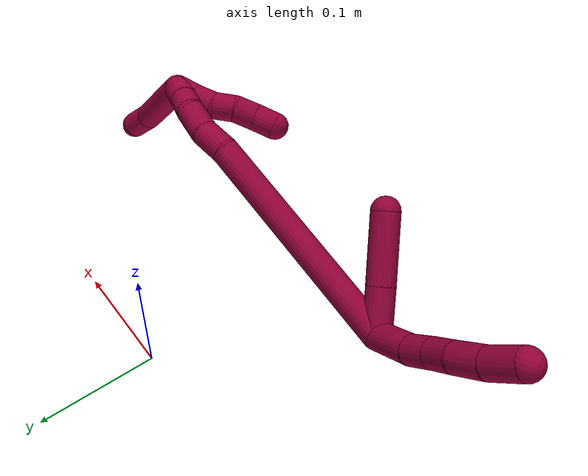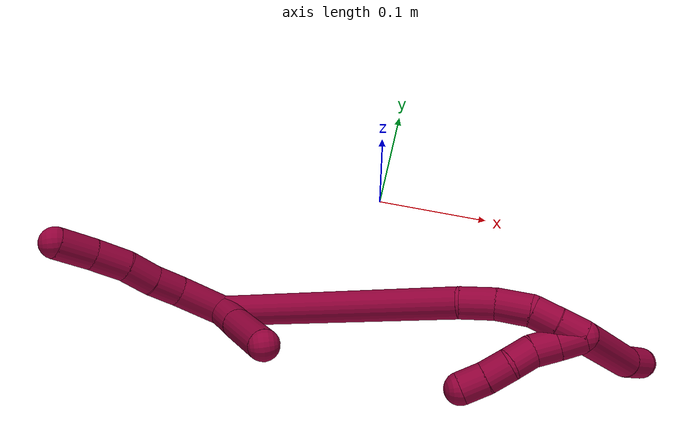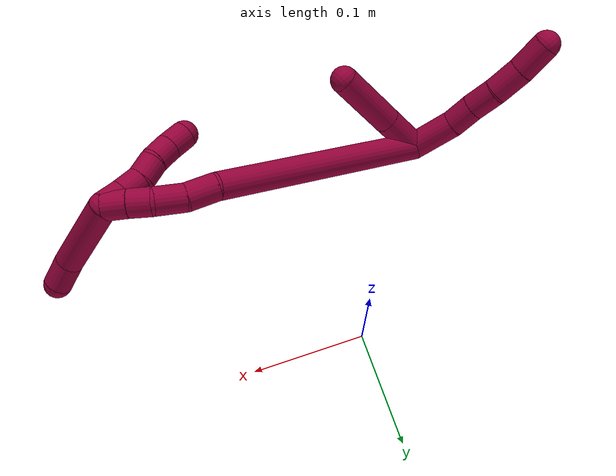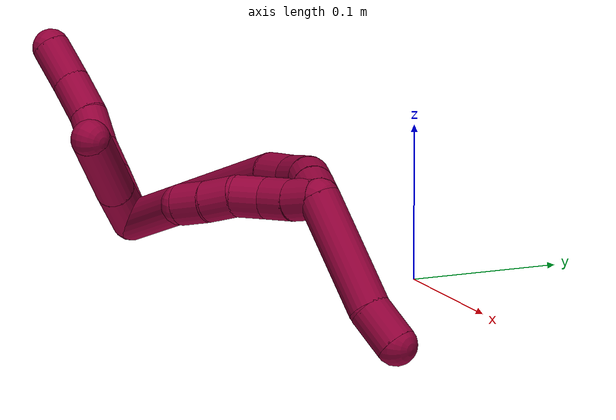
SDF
<sdf version="1.7">
 <world name="default">
  <model name="8">
   <static>0</static>
   <link name="8">
    <collision name="collision-cylinder-e_1_2_8">
     <pose>0.001048 0.011949 0.017153 -0.608435 0.050084 -0.015727</pose>
     <geometry><cylinder><radius>0.0125</radius><length>0.041862</length></cylinder></geometry>
     <surface>
      <friction><ode><mu>1.16</mu><mu2>1.16</mu2><slip1>0</slip1><slip2>0</slip2></ode></friction>
      <contact><ode><kp>1e+06</kp><kd>1</kd><max_vel>0</max_vel><min_depth>0.001</min_depth></ode></contact>
     </surface>
    </collision>
    <visual name="visual-cylinder-e_1_2_8">
     <pose>0.001048 0.011949 0.017153 -0.608435 0.050084 -0.015727</pose>
     <geometry><cylinder><radius>0.0125</radius><length>0.041862</length></cylinder></geometry>
     <material><ambient>0.584314 0 0.227451 1</ambient></material>
    </visual>
    <collision name="collision-cylinder-e_2_8_9">
     <pose>0.004898 0.030974 0.043707 -0.645276 0.233814 -0.078486</pose>
     <geometry><cylinder><radius>0.0125</radius><length>0.024189</length></cylinder></geometry>
     <surface>
      <friction><ode><mu>1.16</mu><mu2>1.16</mu2><slip1>0</slip1><slip2>0</slip2></ode></friction>
      <contact><ode><kp>1e+06</kp><kd>1</kd><max_vel>0</max_vel><min_depth>0.001</min_depth></ode></contact>
     </surface>
    </collision>
    <visual name="visual-cylinder-e_2_8_9">
     <pose>0.004898 0.030974 0.043707 -0.645276 0.233814 -0.078486</pose>
     <geometry><cylinder><radius>0.0125</radius><length>0.024189</length></cylinder></geometry>
     <material><ambient>0.584314 0 0.227451 1</ambient></material>
    </visual>
    <collision name="collision-cylinder-e_3_9_10">
     <pose>0.01007 0.046398 0.062184 -0.743576 0.189821 -0.074204</pose>
     <geometry><cylinder><radius>0.0125</radius><length>0.025116</length></cylinder></geometry>
     <surface>
      <friction><ode><mu>1.16</mu><mu2>1.16</mu2><slip1>0</slip1><slip2>0</slip2></ode></friction>
      <contact><ode><kp>1e+06</kp><kd>1</kd><max_vel>0</max_vel><min_depth>0.001</min_depth></ode></contact>
     </surface>
    </collision>
    <visual name="visual-cylinder-e_3_9_10">
     <pose>0.01007 0.046398 0.062184 -0.743576 0.189821 -0.074204</pose>
     <geometry><cylinder><radius>0.0125</radius><length>0.025116</length></cylinder></geometry>
     <material><ambient>0.584314 0 0.227451 1</ambient></material>
    </visual>
    <collision name="collision-cylinder-e_4_10_11">
     <pose>0.015591 0.06247 0.082892 -0.586212 0.222027 -0.067259</pose>
     <geometry><cylinder><radius>0.0125</radius><length>0.028627</length></cylinder></geometry>
     <surface>
      <friction><ode><mu>1.16</mu><mu2>1.16</mu2><slip1>0</slip1><slip2>0</slip2></ode></friction>
      <contact><ode><kp>1e+06</kp><kd>1</kd><max_vel>0</max_vel><min_depth>0.001</min_depth></ode></contact>
     </surface>
    </collision>
    <visual name="visual-cylinder-e_4_10_11">
     <pose>0.015591 0.06247 0.082892 -0.586212 0.222027 -0.067259</pose>
     <geometry><cylinder><radius>0.0125</radius><length>0.028627</length></cylinder></geometry>
     <material><ambient>0.584314 0 0.227451 1</ambient></material>
    </visual>
    <collision name="collision-cylinder-e_5_11_6">
     <pose>0.023775 0.078106 0.106363 -0.589094 0.33967 -0.103955</pose>
     <geometry><cylinder><radius>0.0125</radius><length>0.030205</length></cylinder></geometry>
     <surface>
      <friction><ode><mu>1.16</mu><mu2>1.16</mu2><slip1>0</slip1><slip2>0</slip2></ode></friction>
      <contact><ode><kp>1e+06</kp><kd>1</kd><max_vel>0</max_vel><min_depth>0.001</min_depth></ode></contact>
     </surface>
    </collision>
    <visual name="visual-cylinder-e_5_11_6">
     <pose>0.023775 0.078106 0.106363 -0.589094 0.33967 -0.103955</pose>
     <geometry><cylinder><radius>0.0125</radius><length>0.030205</length></cylinder></geometry>
     <material><ambient>0.584314 0 0.227451 1</ambient></material>
    </visual>
    <collision name="collision-cylinder-e_1_2_12">
     <pose>0.019004 0.001932 -0.005163 -2.78356 1.28849 -2.66881</pose>
     <geometry><cylinder><radius>0.0125</radius><length>0.039574</length></cylinder></geometry>
     <surface>
      <friction><ode><mu>1.16</mu><mu2>1.16</mu2><slip1>0</slip1><slip2>0</slip2></ode></friction>
      <contact><ode><kp>1e+06</kp><kd>1</kd><max_vel>0</max_vel><min_depth>0.001</min_depth></ode></contact>
     </surface>
    </collision>
    <visual name="visual-cylinder-e_1_2_12">
     <pose>0.019004 0.001932 -0.005163 -2.78356 1.28849 -2.66881</pose>
     <geometry><cylinder><radius>0.0125</radius><length>0.039574</length></cylinder></geometry>
     <material><ambient>0.584314 0 0.227451 1</ambient></material>
    </visual>
    <collision name="collision-cylinder-e_2_12_5">
     <pose>0.066889 0.007598 -0.01837 -2.70692 1.27285 -2.56086</pose>
     <geometry><cylinder><radius>0.0125</radius><length>0.060426</length></cylinder></geometry>
     <surface>
      <friction><ode><mu>1.16</mu><mu2>1.16</mu2><slip1>0</slip1><slip2>0</slip2></ode></friction>
      <contact><ode><kp>1e+06</kp><kd>1</kd><max_vel>0</max_vel><min_depth>0.001</min_depth></ode></contact>
     </surface>
    </collision>
    <visual name="visual-cylinder-e_2_12_5">
     <pose>0.066889 0.007598 -0.01837 -2.70692 1.27285 -2.56086</pose>
     <geometry><cylinder><radius>0.0125</radius><length>0.060426</length></cylinder></geometry>
     <material><ambient>0.584314 0 0.227451 1</ambient></material>
    </visual>
    <collision name="collision-cylinder-e_1_2_13">
     <pose>0.049183 0.01306 -0.087949 -2.99417 0.505262 -2.58437</pose>
     <geometry><cylinder><radius>0.0125</radius><length>0.203221</length></cylinder></geometry>
     <surface>
      <friction><ode><mu>1.16</mu><mu2>1.16</mu2><slip1>0</slip1><slip2>0</slip2></ode></friction>
      <contact><ode><kp>1e+06</kp><kd>1</kd><max_vel>0</max_vel><min_depth>0.001</min_depth></ode></contact>
     </surface>
    </collision>
    <visual name="visual-cylinder-e_1_2_13">
     <pose>0.049183 0.01306 -0.087949 -2.99417 0.505262 -2.58437</pose>
     <geometry><cylinder><radius>0.0125</radius><length>0.203221</length></cylinder></geometry>
     <material><ambient>0.584314 0 0.227451 1</ambient></material>
    </visual>
    <collision name="collision-cylinder-e_2_13_14">
     <pose>0.103046 0.025795 -0.189053 3.11687 0.341703 2.99856</pose>
     <geometry><cylinder><radius>0.0125</radius><length>0.027932</length></cylinder></geometry>
     <surface>
      <friction><ode><mu>1.16</mu><mu2>1.16</mu2><slip1>0</slip1><slip2>0</slip2></ode></friction>
      <contact><ode><kp>1e+06</kp><kd>1</kd><max_vel>0</max_vel><min_depth>0.001</min_depth></ode></contact>
     </surface>
    </collision>
    <visual name="visual-cylinder-e_2_13_14">
     <pose>0.103046 0.025795 -0.189053 3.11687 0.341703 2.99856</pose>
     <geometry><cylinder><radius>0.0125</radius><length>0.027932</length></cylinder></geometry>
     <material><ambient>0.584314 0 0.227451 1</ambient></material>
    </visual>
    <collision name="collision-cylinder-e_3_14_15">
     <pose>0.114821 0.02418 -0.213838 3.03116 0.545091 2.75111</pose>
     <geometry><cylinder><radius>0.0125</radius><length>0.027369</length></cylinder></geometry>
     <surface>
      <friction><ode><mu>1.16</mu><mu2>1.16</mu2><slip1>0</slip1><slip2>0</slip2></ode></friction>
      <contact><ode><kp>1e+06</kp><kd>1</kd><max_vel>0</max_vel><min_depth>0.001</min_depth></ode></contact>
     </surface>
    </collision>
    <visual name="visual-cylinder-e_3_14_15">
     <pose>0.114821 0.02418 -0.213838 3.03116 0.545091 2.75111</pose>
     <geometry><cylinder><radius>0.0125</radius><length>0.027369</length></cylinder></geometry>
     <material><ambient>0.584314 0 0.227451 1</ambient></material>
    </visual>
    <collision name="collision-cylinder-e_4_15_16">
     <pose>0.12667 0.018889 -0.233429 2.67581 0.490084 1.62362</pose>
     <geometry><cylinder><radius>0.0125</radius><length>0.020198</length></cylinder></geometry>
     <surface>
      <friction><ode><mu>1.16</mu><mu2>1.16</mu2><slip1>0</slip1><slip2>0</slip2></ode></friction>
      <contact><ode><kp>1e+06</kp><kd>1</kd><max_vel>0</max_vel><min_depth>0.001</min_depth></ode></contact>
     </surface>
    </collision>
    <visual name="visual-cylinder-e_4_15_16">
     <pose>0.12667 0.018889 -0.233429 2.67581 0.490084 1.62362</pose>
     <geometry><cylinder><radius>0.0125</radius><length>0.020198</length></cylinder></geometry>
     <material><ambient>0.584314 0 0.227451 1</ambient></material>
    </visual>
    <collision name="collision-cylinder-e_5_16_1">
     <pose>0.135922 0.01033 -0.249888 2.6494 0.436489 1.4466</pose>
     <geometry><cylinder><radius>0.0125</radius><length>0.02128</length></cylinder></geometry>
     <surface>
      <friction><ode><mu>1.16</mu><mu2>1.16</mu2><slip1>0</slip1><slip2>0</slip2></ode></friction>
      <contact><ode><kp>1e+06</kp><kd>1</kd><max_vel>0</max_vel><min_depth>0.001</min_depth></ode></contact>
     </surface>
    </collision>
    <visual name="visual-cylinder-e_5_16_1">
     <pose>0.135922 0.01033 -0.249888 2.6494 0.436489 1.4466</pose>
     <geometry><cylinder><radius>0.0125</radius><length>0.02128</length></cylinder></geometry>
     <material><ambient>0.584314 0 0.227451 1</ambient></material>
    </visual>
    <collision name="collision-cylinder-e_1_1_17">
     <pose>0.125428 -0.016422 -0.283829 2.42427 -0.417893 -1.02953</pose>
     <geometry><cylinder><radius>0.0125</radius><length>0.073885</length></cylinder></geometry>
     <surface>
      <friction><ode><mu>1.16</mu><mu2>1.16</mu2><slip1>0</slip1><slip2>0</slip2></ode></friction>
      <contact><ode><kp>1e+06</kp><kd>1</kd><max_vel>0</max_vel><min_depth>0.001</min_depth></ode></contact>
     </surface>
    </collision>
    <visual name="visual-cylinder-e_1_1_17">
     <pose>0.125428 -0.016422 -0.283829 2.42427 -0.417893 -1.02953</pose>
     <geometry><cylinder><radius>0.0125</radius><length>0.073885</length></cylinder></geometry>
     <material><ambient>0.584314 0 0.227451 1</ambient></material>
    </visual>
    <collision name="collision-cylinder-e_2_17_4">
     <pose>0.104284 -0.044034 -0.319436 2.6519 -0.490569 -1.57265</pose>
     <geometry><cylinder><radius>0.0125</radius><length>0.026115</length></cylinder></geometry>
     <surface>
      <friction><ode><mu>1.16</mu><mu2>1.16</mu2><slip1>0</slip1><slip2>0</slip2></ode></friction>
      <contact><ode><kp>1e+06</kp><kd>1</kd><max_vel>0</max_vel><min_depth>0.001</min_depth></ode></contact>
     </surface>
    </collision>
    <visual name="visual-cylinder-e_2_17_4">
     <pose>0.104284 -0.044034 -0.319436 2.6519 -0.490569 -1.57265</pose>
     <geometry><cylinder><radius>0.0125</radius><length>0.026115</length></cylinder></geometry>
     <material><ambient>0.584314 0 0.227451 1</ambient></material>
    </visual>
    <collision name="collision-cylinder-e_1_1_18">
     <pose>0.139031 0.003241 -0.248813 0.258586 -0.139458 -0.018161</pose>
     <geometry><cylinder><radius>0.0125</radius><length>0.02</length></cylinder></geometry>
     <surface>
      <friction><ode><mu>1.16</mu><mu2>1.16</mu2><slip1>0</slip1><slip2>0</slip2></ode></friction>
      <contact><ode><kp>1e+06</kp><kd>1</kd><max_vel>0</max_vel><min_depth>0.001</min_depth></ode></contact>
     </surface>
    </collision>
    <visual name="visual-cylinder-e_1_1_18">
     <pose>0.139031 0.003241 -0.248813 0.258586 -0.139458 -0.018161</pose>
     <geometry><cylinder><radius>0.0125</radius><length>0.02</length></cylinder></geometry>
     <material><ambient>0.584314 0 0.227451 1</ambient></material>
    </visual>
    <collision name="collision-cylinder-e_2_18_19">
     <pose>0.137005 -0.000998 -0.229406 0.171867 -0.063632 -0.005483</pose>
     <geometry><cylinder><radius>0.0125</radius><length>0.02</length></cylinder></geometry>
     <surface>
      <friction><ode><mu>1.16</mu><mu2>1.16</mu2><slip1>0</slip1><slip2>0</slip2></ode></friction>
      <contact><ode><kp>1e+06</kp><kd>1</kd><max_vel>0</max_vel><min_depth>0.001</min_depth></ode></contact>
     </surface>
    </collision>
    <visual name="visual-cylinder-e_2_18_19">
     <pose>0.137005 -0.000998 -0.229406 0.171867 -0.063632 -0.005483</pose>
     <geometry><cylinder><radius>0.0125</radius><length>0.02</length></cylinder></geometry>
     <material><ambient>0.584314 0 0.227451 1</ambient></material>
    </visual>
    <collision name="collision-cylinder-e_3_19_20">
     <pose>0.138332 -0.005762 -0.210257 0.317112 0.19762 0.0317</pose>
     <geometry><cylinder><radius>0.0125</radius><length>0.02</length></cylinder></geometry>
     <surface>
      <friction><ode><mu>1.16</mu><mu2>1.16</mu2><slip1>0</slip1><slip2>0</slip2></ode></friction>
      <contact><ode><kp>1e+06</kp><kd>1</kd><max_vel>0</max_vel><min_depth>0.001</min_depth></ode></contact>
     </surface>
    </collision>
    <visual name="visual-cylinder-e_3_19_20">
     <pose>0.138332 -0.005762 -0.210257 0.317112 0.19762 0.0317</pose>
     <geometry><cylinder><radius>0.0125</radius><length>0.02</length></cylinder></geometry>
     <material><ambient>0.584314 0 0.227451 1</ambient></material>
    </visual>
    <collision name="collision-cylinder-e_4_20_21">
     <pose>0.139983 -0.013182 -0.191948 0.451669 -0.03126 -0.007183</pose>
     <geometry><cylinder><radius>0.0125</radius><length>0.02</length></cylinder></geometry>
     <surface>
      <friction><ode><mu>1.16</mu><mu2>1.16</mu2><slip1>0</slip1><slip2>0</slip2></ode></friction>
      <contact><ode><kp>1e+06</kp><kd>1</kd><max_vel>0</max_vel><min_depth>0.001</min_depth></ode></contact>
     </surface>
    </collision>
    <visual name="visual-cylinder-e_4_20_21">
     <pose>0.139983 -0.013182 -0.191948 0.451669 -0.03126 -0.007183</pose>
     <geometry><cylinder><radius>0.0125</radius><length>0.02</length></cylinder></geometry>
     <material><ambient>0.584314 0 0.227451 1</ambient></material>
    </visual>
    <collision name="collision-cylinder-e_5_21_3">
     <pose>0.138904 -0.020807 -0.173533 0.333313 -0.076685 -0.012906</pose>
     <geometry><cylinder><radius>0.0125</radius><length>0.02</length></cylinder></geometry>
     <surface>
      <friction><ode><mu>1.16</mu><mu2>1.16</mu2><slip1>0</slip1><slip2>0</slip2></ode></friction>
      <contact><ode><kp>1e+06</kp><kd>1</kd><max_vel>0</max_vel><min_depth>0.001</min_depth></ode></contact>
     </surface>
    </collision>
    <visual name="visual-cylinder-e_5_21_3">
     <pose>0.138904 -0.020807 -0.173533 0.333313 -0.076685 -0.012906</pose>
     <geometry><cylinder><radius>0.0125</radius><length>0.02</length></cylinder></geometry>
     <material><ambient>0.584314 0 0.227451 1</ambient></material>
    </visual>
    <collision name="collision-sphere-3">
     <pose>0.138138 -0.024069 -0.164111 0 -0 0</pose>
     <geometry><sphere><radius>0.0125</radius></sphere></geometry>
     <surface>
      <friction><ode><mu>1.16</mu><mu2>1.16</mu2><slip1>0</slip1><slip2>0</slip2></ode></friction>
      <contact><ode><kp>1e+06</kp><kd>1</kd><max_vel>0</max_vel><min_depth>0.001</min_depth></ode></contact>
     </surface>
    </collision>
    <visual name="visual-sphere-3">
     <pose>0.138138 -0.024069 -0.164111 0 -0 0</pose>
     <geometry><sphere><radius>0.0125</radius></sphere></geometry>
     <material><ambient>0.584314 0 0.227451 1</ambient></material>
    </visual>
    <collision name="collision-sphere-21">
     <pose>0.13967 -0.017545 -0.182955 0 -0 0</pose>
     <geometry><sphere><radius>0.0125</radius></sphere></geometry>
     <surface>
      <friction><ode><mu>1.16</mu><mu2>1.16</mu2><slip1>0</slip1><slip2>0</slip2></ode></friction>
      <contact><ode><kp>1e+06</kp><kd>1</kd><max_vel>0</max_vel><min_depth>0.001</min_depth></ode></contact>
     </surface>
    </collision>
    <visual name="visual-sphere-21">
     <pose>0.13967 -0.017545 -0.182955 0 -0 0</pose>
     <geometry><sphere><radius>0.0125</radius></sphere></geometry>
     <material><ambient>0.584314 0 0.227451 1</ambient></material>
    </visual>
    <collision name="collision-sphere-20">
     <pose>0.140295 -0.00882 -0.20094 0 -0 0</pose>
     <geometry><sphere><radius>0.0125</radius></sphere></geometry>
     <surface>
      <friction><ode><mu>1.16</mu><mu2>1.16</mu2><slip1>0</slip1><slip2>0</slip2></ode></friction>
      <contact><ode><kp>1e+06</kp><kd>1</kd><max_vel>0</max_vel><min_depth>0.001</min_depth></ode></contact>
     </surface>
    </collision>
    <visual name="visual-sphere-20">
     <pose>0.140295 -0.00882 -0.20094 0 -0 0</pose>
     <geometry><sphere><radius>0.0125</radius></sphere></geometry>
     <material><ambient>0.584314 0 0.227451 1</ambient></material>
    </visual>
    <collision name="collision-sphere-19">
     <pose>0.136369 -0.002705 -0.219573 0 -0 0</pose>
     <geometry><sphere><radius>0.0125</radius></sphere></geometry>
     <surface>
      <friction><ode><mu>1.16</mu><mu2>1.16</mu2><slip1>0</slip1><slip2>0</slip2></ode></friction>
      <contact><ode><kp>1e+06</kp><kd>1</kd><max_vel>0</max_vel><min_depth>0.001</min_depth></ode></contact>
     </surface>
    </collision>
    <visual name="visual-sphere-19">
     <pose>0.136369 -0.002705 -0.219573 0 -0 0</pose>
     <geometry><sphere><radius>0.0125</radius></sphere></geometry>
     <material><ambient>0.584314 0 0.227451 1</ambient></material>
    </visual>
    <collision name="collision-sphere-6">
     <pose>0.028807 0.086018 0.118203 0 -0 0</pose>
     <geometry><sphere><radius>0.0125</radius></sphere></geometry>
     <surface>
      <friction><ode><mu>1.16</mu><mu2>1.16</mu2><slip1>0</slip1><slip2>0</slip2></ode></friction>
      <contact><ode><kp>1e+06</kp><kd>1</kd><max_vel>0</max_vel><min_depth>0.001</min_depth></ode></contact>
     </surface>
    </collision>
    <visual name="visual-sphere-6">
     <pose>0.028807 0.086018 0.118203 0 -0 0</pose>
     <geometry><sphere><radius>0.0125</radius></sphere></geometry>
     <material><ambient>0.584314 0 0.227451 1</ambient></material>
    </visual>
    <collision name="collision-sphere-11">
     <pose>0.018743 0.070194 0.094524 0 -0 0</pose>
     <geometry><sphere><radius>0.0125</radius></sphere></geometry>
     <surface>
      <friction><ode><mu>1.16</mu><mu2>1.16</mu2><slip1>0</slip1><slip2>0</slip2></ode></friction>
      <contact><ode><kp>1e+06</kp><kd>1</kd><max_vel>0</max_vel><min_depth>0.001</min_depth></ode></contact>
     </surface>
    </collision>
    <visual name="visual-sphere-11">
     <pose>0.018743 0.070194 0.094524 0 -0 0</pose>
     <geometry><sphere><radius>0.0125</radius></sphere></geometry>
     <material><ambient>0.584314 0 0.227451 1</ambient></material>
    </visual>
    <collision name="collision-sphere-10">
     <pose>0.012439 0.054746 0.071261 0 -0 0</pose>
     <geometry><sphere><radius>0.0125</radius></sphere></geometry>
     <surface>
      <friction><ode><mu>1.16</mu><mu2>1.16</mu2><slip1>0</slip1><slip2>0</slip2></ode></friction>
      <contact><ode><kp>1e+06</kp><kd>1</kd><max_vel>0</max_vel><min_depth>0.001</min_depth></ode></contact>
     </surface>
    </collision>
    <visual name="visual-sphere-10">
     <pose>0.012439 0.054746 0.071261 0 -0 0</pose>
     <geometry><sphere><radius>0.0125</radius></sphere></geometry>
     <material><ambient>0.584314 0 0.227451 1</ambient></material>
    </visual>
    <collision name="collision-sphere-9">
     <pose>0.0077 0.03805 0.053107 0 -0 0</pose>
     <geometry><sphere><radius>0.0125</radius></sphere></geometry>
     <surface>
      <friction><ode><mu>1.16</mu><mu2>1.16</mu2><slip1>0</slip1><slip2>0</slip2></ode></friction>
      <contact><ode><kp>1e+06</kp><kd>1</kd><max_vel>0</max_vel><min_depth>0.001</min_depth></ode></contact>
     </surface>
    </collision>
    <visual name="visual-sphere-9">
     <pose>0.0077 0.03805 0.053107 0 -0 0</pose>
     <geometry><sphere><radius>0.0125</radius></sphere></geometry>
     <material><ambient>0.584314 0 0.227451 1</ambient></material>
    </visual>
    <collision name="collision-sphere-2">
     <geometry><sphere><radius>0.0125</radius></sphere></geometry>
     <surface>
      <friction><ode><mu>1.16</mu><mu2>1.16</mu2><slip1>0</slip1><slip2>0</slip2></ode></friction>
      <contact><ode><kp>1e+06</kp><kd>1</kd><max_vel>0</max_vel><min_depth>0.001</min_depth></ode></contact>
     </surface>
    </collision>
    <visual name="visual-sphere-2">
     <geometry><sphere><radius>0.0125</radius></sphere></geometry>
     <material><ambient>0.584314 0 0.227451 1</ambient></material>
    </visual>
    <collision name="collision-sphere-8">
     <pose>0.002096 0.023898 0.034307 0 -0 0</pose>
     <geometry><sphere><radius>0.0125</radius></sphere></geometry>
     <surface>
      <friction><ode><mu>1.16</mu><mu2>1.16</mu2><slip1>0</slip1><slip2>0</slip2></ode></friction>
      <contact><ode><kp>1e+06</kp><kd>1</kd><max_vel>0</max_vel><min_depth>0.001</min_depth></ode></contact>
     </surface>
    </collision>
    <visual name="visual-sphere-8">
     <pose>0.002096 0.023898 0.034307 0 -0 0</pose>
     <geometry><sphere><radius>0.0125</radius></sphere></geometry>
     <material><ambient>0.584314 0 0.227451 1</ambient></material>
    </visual>
    <collision name="collision-sphere-12">
     <pose>0.038007 0.003863 -0.010325 0 -0 0</pose>
     <geometry><sphere><radius>0.0125</radius></sphere></geometry>
     <surface>
      <friction><ode><mu>1.16</mu><mu2>1.16</mu2><slip1>0</slip1><slip2>0</slip2></ode></friction>
      <contact><ode><kp>1e+06</kp><kd>1</kd><max_vel>0</max_vel><min_depth>0.001</min_depth></ode></contact>
     </surface>
    </collision>
    <visual name="visual-sphere-12">
     <pose>0.038007 0.003863 -0.010325 0 -0 0</pose>
     <geometry><sphere><radius>0.0125</radius></sphere></geometry>
     <material><ambient>0.584314 0 0.227451 1</ambient></material>
    </visual>
    <collision name="collision-sphere-5">
     <pose>0.095771 0.011333 -0.026414 0 -0 0</pose>
     <geometry><sphere><radius>0.0125</radius></sphere></geometry>
     <surface>
      <friction><ode><mu>1.16</mu><mu2>1.16</mu2><slip1>0</slip1><slip2>0</slip2></ode></friction>
      <contact><ode><kp>1e+06</kp><kd>1</kd><max_vel>0</max_vel><min_depth>0.001</min_depth></ode></contact>
     </surface>
    </collision>
    <visual name="visual-sphere-5">
     <pose>0.095771 0.011333 -0.026414 0 -0 0</pose>
     <geometry><sphere><radius>0.0125</radius></sphere></geometry>
     <material><ambient>0.584314 0 0.227451 1</ambient></material>
    </visual>
    <collision name="collision-sphere-13">
     <pose>0.098366 0.02612 -0.175899 0 -0 0</pose>
     <geometry><sphere><radius>0.0125</radius></sphere></geometry>
     <surface>
      <friction><ode><mu>1.16</mu><mu2>1.16</mu2><slip1>0</slip1><slip2>0</slip2></ode></friction>
      <contact><ode><kp>1e+06</kp><kd>1</kd><max_vel>0</max_vel><min_depth>0.001</min_depth></ode></contact>
     </surface>
    </collision>
    <visual name="visual-sphere-13">
     <pose>0.098366 0.02612 -0.175899 0 -0 0</pose>
     <geometry><sphere><radius>0.0125</radius></sphere></geometry>
     <material><ambient>0.584314 0 0.227451 1</ambient></material>
    </visual>
    <collision name="collision-sphere-14">
     <pose>0.107726 0.02547 -0.202208 0 -0 0</pose>
     <geometry><sphere><radius>0.0125</radius></sphere></geometry>
     <surface>
      <friction><ode><mu>1.16</mu><mu2>1.16</mu2><slip1>0</slip1><slip2>0</slip2></ode></friction>
      <contact><ode><kp>1e+06</kp><kd>1</kd><max_vel>0</max_vel><min_depth>0.001</min_depth></ode></contact>
     </surface>
    </collision>
    <visual name="visual-sphere-14">
     <pose>0.107726 0.02547 -0.202208 0 -0 0</pose>
     <geometry><sphere><radius>0.0125</radius></sphere></geometry>
     <material><ambient>0.584314 0 0.227451 1</ambient></material>
    </visual>
    <collision name="collision-sphere-15">
     <pose>0.121917 0.02289 -0.225468 0 -0 0</pose>
     <geometry><sphere><radius>0.0125</radius></sphere></geometry>
     <surface>
      <friction><ode><mu>1.16</mu><mu2>1.16</mu2><slip1>0</slip1><slip2>0</slip2></ode></friction>
      <contact><ode><kp>1e+06</kp><kd>1</kd><max_vel>0</max_vel><min_depth>0.001</min_depth></ode></contact>
     </surface>
    </collision>
    <visual name="visual-sphere-15">
     <pose>0.121917 0.02289 -0.225468 0 -0 0</pose>
     <geometry><sphere><radius>0.0125</radius></sphere></geometry>
     <material><ambient>0.584314 0 0.227451 1</ambient></material>
    </visual>
    <collision name="collision-sphere-16">
     <pose>0.131424 0.014887 -0.24139 0 -0 0</pose>
     <geometry><sphere><radius>0.0125</radius></sphere></geometry>
     <surface>
      <friction><ode><mu>1.16</mu><mu2>1.16</mu2><slip1>0</slip1><slip2>0</slip2></ode></friction>
      <contact><ode><kp>1e+06</kp><kd>1</kd><max_vel>0</max_vel><min_depth>0.001</min_depth></ode></contact>
     </surface>
    </collision>
    <visual name="visual-sphere-16">
     <pose>0.131424 0.014887 -0.24139 0 -0 0</pose>
     <geometry><sphere><radius>0.0125</radius></sphere></geometry>
     <material><ambient>0.584314 0 0.227451 1</ambient></material>
    </visual>
    <collision name="collision-sphere-1">
     <pose>0.140421 0.005773 -0.258386 0 -0 0</pose>
     <geometry><sphere><radius>0.0125</radius></sphere></geometry>
     <surface>
      <friction><ode><mu>1.16</mu><mu2>1.16</mu2><slip1>0</slip1><slip2>0</slip2></ode></friction>
      <contact><ode><kp>1e+06</kp><kd>1</kd><max_vel>0</max_vel><min_depth>0.001</min_depth></ode></contact>
     </surface>
    </collision>
    <visual name="visual-sphere-1">
     <pose>0.140421 0.005773 -0.258386 0 -0 0</pose>
     <geometry><sphere><radius>0.0125</radius></sphere></geometry>
     <material><ambient>0.584314 0 0.227451 1</ambient></material>
    </visual>
    <collision name="collision-sphere-18">
     <pose>0.13764 0.000709 -0.239239 0 -0 0</pose>
     <geometry><sphere><radius>0.0125</radius></sphere></geometry>
     <surface>
      <friction><ode><mu>1.16</mu><mu2>1.16</mu2><slip1>0</slip1><slip2>0</slip2></ode></friction>
      <contact><ode><kp>1e+06</kp><kd>1</kd><max_vel>0</max_vel><min_depth>0.001</min_depth></ode></contact>
     </surface>
    </collision>
    <visual name="visual-sphere-18">
     <pose>0.13764 0.000709 -0.239239 0 -0 0</pose>
     <geometry><sphere><radius>0.0125</radius></sphere></geometry>
     <material><ambient>0.584314 0 0.227451 1</ambient></material>
    </visual>
    <collision name="collision-sphere-17">
     <pose>0.110435 -0.038617 -0.309273 0 -0 0</pose>
     <geometry><sphere><radius>0.0125</radius></sphere></geometry>
     <surface>
      <friction><ode><mu>1.16</mu><mu2>1.16</mu2><slip1>0</slip1><slip2>0</slip2></ode></friction>
      <contact><ode><kp>1e+06</kp><kd>1</kd><max_vel>0</max_vel><min_depth>0.001</min_depth></ode></contact>
     </surface>
    </collision>
    <visual name="visual-sphere-17">
     <pose>0.110435 -0.038617 -0.309273 0 -0 0</pose>
     <geometry><sphere><radius>0.0125</radius></sphere></geometry>
     <material><ambient>0.584314 0 0.227451 1</ambient></material>
    </visual>
    <collision name="collision-sphere-4">
     <pose>0.098132 -0.049452 -0.3296 0 -0 0</pose>
     <geometry><sphere><radius>0.0125</radius></sphere></geometry>
     <surface>
      <friction><ode><mu>1.16</mu><mu2>1.16</mu2><slip1>0</slip1><slip2>0</slip2></ode></friction>
      <contact><ode><kp>1e+06</kp><kd>1</kd><max_vel>0</max_vel><min_depth>0.001</min_depth></ode></contact>
     </surface>
    </collision>
    <visual name="visual-sphere-4">
     <pose>0.098132 -0.049452 -0.3296 0 -0 0</pose>
     <geometry><sphere><radius>0.0125</radius></sphere></geometry>
     <material><ambient>0.584314 0 0.227451 1</ambient></material>
    </visual>
    <inertial>
     <pose>0.071595 0.011496 -0.109096 0 -0 0</pose>
     <mass>0.75</mass>
     <inertia>
      <ixx>-0.000836</ixx>
      <ixy>0</ixy>
      <ixz>0</ixz>
      <iyy>0.000312</iyy>
      <iyz>0</iyz>
      <izz>-0.000449</izz>
     </inertia>
    </inertial>
   </link>
   <pose>-0.10549 -0.150399 0.029793 1.45534 -0.701543 -1.1079</pose>
  </model>
 </world>
</sdf>
